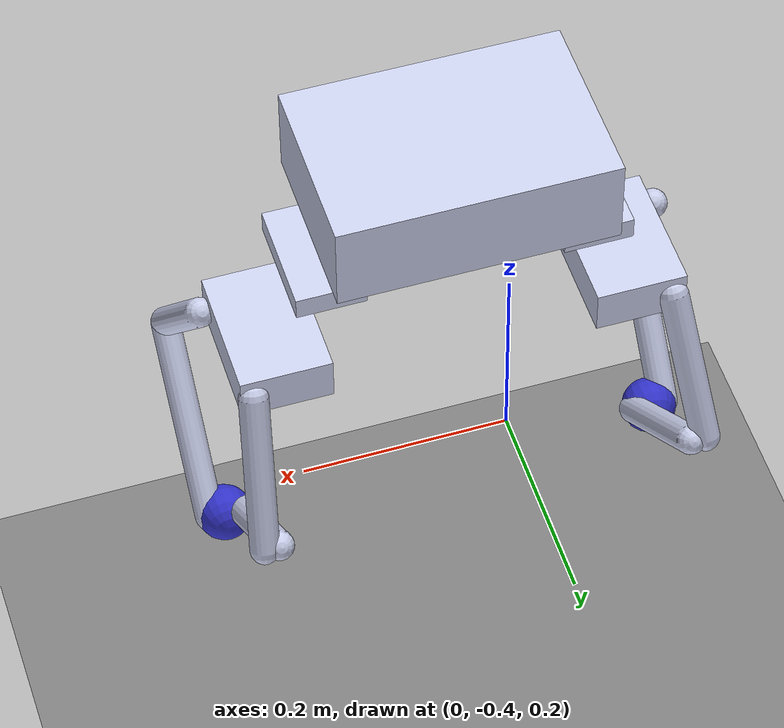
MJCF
<mujoco model="simplified_robot">

  <compiler angle="radian" eulerseq="XYZ" meshdir="urdf/robot.SLDASM/meshes/"/>

  <option gravity="0 0 -9.81" timestep="0.002"/>

  <default>
    <joint damping="0.1" armature="0.01"/>
    <geom contype="0" conaffinity="0" rgba="0.8 0.82 0.93 1"/>
  </default>

  <!-- ======================================================
       ASSETS — swap type="mesh" once STL files are ready
       ====================================================== -->
  <asset>
  </asset>

  <!-- ======================================================
       WORLD BODY
       ====================================================== -->
  <worldbody>

    <!-- Ground plane -->
    <geom name="floor" type="plane" size="5 5 0.1" pos="0 0 0"
          contype="1" conaffinity="1" rgba="0.5 0.5 0.5 1"/>

    <!-- ── BASE ────────────────────────────────────────────── -->
    <!-- Spawned 0.5m above ground; freejoint allows it to fall/move freely -->
    <body name="base_link" pos="0 0 0.5">
      <freejoint name="root"/>
      <inertial pos="0.100464743379373 -0.273417797162494 0.231369380364405"
                mass="8.12765796417228"
                fullinertia="0.113381267165392 0.104302535100205 0.193324449577809
                             -1.10883716950187e-17 6.53856800641098e-18 7.39699722855432e-05"/>
      <!-- placeholder visual: box approximating the body -->
      <geom name="base_vis" type="box" size="0.12 0.08 0.04" pos="0.1 -0.27 0.23"/>

      <body name="pad_link_right"
            pos="-0.0145352566206275 -0.168456056407975 0.153440174945304"
            euler="-3.14159265358979 0 3.14159265358979">
        <inertial pos="-3.55729214853301e-05 -0.105 0"
                  mass="1.05976991118431"
                  fullinertia="0.00120769274628234 0.0023325641456101 0.00141046839633323
                               -5.29395592033938e-22 8.824233070056e-20 -2.4525925475937e-21"/>
        <geom name="pad_right_vis" type="box" size="0.03 0.05 0.01" pos="0 -0.105 0"/>

        <!-- hip_frame_joint_right: xyz="0.01 -0.105 0.097"  rpy="0 0 π/2" -->
        <body name="hip_frame_link_right"
              pos="0.01 -0.105 0.097"
              euler="0 0 1.5707963267949">
          <inertial pos="-0.00787535032168385 -0.0307485208640013 0"
                    mass="1.51193274122872"
                    fullinertia="0.00230798720358944 0.00722477501190136 0.00595941566724505
                                 -0.000347926290296318 1.89078126881913e-19 4.08813026916916e-19"/>
          <geom name="hip_frame_right_vis" type="box" size="0.06 0.04 0.02" pos="-0.008 -0.031 0"/>

          <!-- ── ACTIVE CHAIN (right) ──────────────────────────── -->
          <!-- thigh_joint_right_1: xyz="0.0510 -0.06 0"  rpy="π -1.10816 0" -->
          <body name="thigh_right_1"
                pos="0.0510000000000153 -0.06 0"
                euler="3.14159265358979 -1.10816260407562 0">
            <joint name="thigh_joint_right_1" type="hinge" axis="0 1 0"
                   range="-3.14159 3.14159"/>
            <inertial pos="0.0700000000000471 0.00650000000000001 0"
                      mass="0.116525440310417"
                      fullinertia="2.4587749999541e-05 0.000338559690951383 0.000317254074187252
                                   -1.36515067319353e-21 1.53967296404782e-15 2.19953294954768e-21"/>
            <geom name="thigh_right_1_vis" type="capsule" size="0.013" fromto="0 0 0 0.14 0.013 0"/>

            <!-- calf_joint_right_1: xyz="0.14 0 0"  rpy="π -1.31007 π" -->
            <body name="calf_right_link_1"
                  pos="0.13999999999996 0 0"
                  euler="3.14159265358979 -1.31007351696931 3.14159265358979">
              <joint name="calf_joint_right_1" type="hinge" axis="0 1 0"
                     range="-3.14159 3.14159"/>
              <inertial pos="-0.0900000000007728 -0.00650000000000001 0"
                        mass="0.142525440310417"
                        fullinertia="3.03705833328743e-05 0.000603757766611383 0.000577401649847252
                                     9.05353026545483e-22 9.29316268849425e-16 2.33468699611553e-22"/>
              <geom name="calf_right_1_vis" type="capsule" size="0.013" fromto="0 0 0 -0.18 0.001 0"/>

              <!-- wheel_joint_right: xyz="-0.180 0.001 0"  rpy="0 0.92880 π" -->
              <body name="wheel_link_right"
                    pos="-0.180000000000025 0.000999999999999987 0"
                    euler="0 0.928798996028179 3.14159265358979">
                <joint name="wheel_joint_right" type="hinge" axis="0 1 0"
                       range="-3.14159 3.14159" damping="0.01"/>
                <inertial pos="0 -0.015 0"
                          mass="0.234111484545512"
                          fullinertia="0.00016481448512004 0.000294512247558254 0.00016481448512004
                                       -1.38494337144744e-21 -2.5410988417629e-21 3.31377145312428e-21"/>
                <!-- foot contact sphere -->
                <geom name="wheel_right_col" type="sphere" size="0.025" pos="0 -0.015 0"
                      contype="1" conaffinity="1" rgba="0.2 0.2 0.8 1"/>
              </body>
            </body>
          </body>

          <!-- ── PASSIVE CHAIN (right) — loop broken here ─────── -->
          <!-- thigh_joint_right_2: xyz="-0.0510 -0.078 0"  rpy="0 -0.88686 π" -->
          <body name="thigh_right_2"
                pos="-0.0510000000000018 -0.078 0"
                euler="0 -0.886862904121189 3.14159265358979">
            <joint name="thigh_joint_right_2" type="hinge" axis="0 1 0"
                   range="-3.14159 3.14159"/>
            <inertial pos="0.0699999999999911 0.00649999999999999 0"
                      mass="0.116525440310417"
                      fullinertia="2.45877499995411e-05 0.000338559690951382 0.000317254074187251
                                   6.9352432719385e-22 1.05707424828379e-15 -2.84526358354157e-21"/>
            <geom name="thigh_right_2_vis" type="capsule" size="0.013" fromto="0 0 0 0.14 0.013 0"/>

            <!-- calf_joint_right_2: xyz="0.140 0.013 0"  rpy="π 1.39897 π" -->
            <body name="calf_right_link_2"
                  pos="0.140000000000064 0.013 0"
                  euler="3.14159265358979 1.39896599112596 3.14159265358979">
              <joint name="calf_joint_right_2" type="hinge" axis="0 1 0"
                     range="-3.14159 3.14159"/>
              <inertial pos="-0.0899999999994293 0.00649999999999999 0"
                        mass="0.142525440310417"
                        fullinertia="3.03705833328744e-05 0.000603757766611383 0.000577401649847252
                                     -2.23748770220882e-21 2.01531838634784e-15 -1.81007091485894e-21"/>
              <geom name="calf_right_2_vis" type="capsule" size="0.013" fromto="0 0 0 -0.18 -0.001 0"/>
              <!-- TIP SITE — used as anchor for equality constraint -->
              <site name="calf_right_2_tip" pos="-0.18 -0.001 0" size="0.005"/>
            </body>
          </body>

        </body><!-- hip_frame_link_right -->
      </body><!-- pad_link_right -->

      <body name="pad_link_left"
            pos="0.215464743379373 -0.378456056407975 0.153440174945304"
            euler="3.14159265358979 0 0">
        <inertial pos="-3.5572921485344e-05 -0.105 0"
                  mass="1.05976991118431"
                  fullinertia="0.00120769274628234 0.0023325641456101 0.00141046839633323
                               1.05879118406788e-22 -2.33498734180828e-19 1.83171406703271e-21"/>
        <geom name="pad_left_vis" type="box" size="0.03 0.05 0.01" pos="0 -0.105 0"/>

        <!-- hil_frame_joint_left (typo in original URDF): xyz="0.01 -0.105 0.097"  rpy="0 0 -π/2" -->
        <body name="hip_frame_link_left"
              pos="0.01 -0.105 0.097"
              euler="0 0 -1.5707963267949">
          <inertial pos="-0.0078753503216839 0.0307485208640013 0"
                    mass="1.51193274122872"
                    fullinertia="0.00230798720358944 0.00722477501190135 0.00595941566724504
                                 0.000347926290296318 -1.35078386623163e-18 8.40488619506597e-20"/>
          <geom name="hip_frame_left_vis" type="box" size="0.06 0.04 0.02" pos="-0.008 0.031 0"/>

          <!-- ── ACTIVE CHAIN (left) ───────────────────────────── -->
          <!-- thigh_joint_left_1: xyz="0.0510 0.06 0"  rpy="π -1.10060 0" -->
          <body name="thigh_left_1"
                pos="0.0509999999999999 0.06 0"
                euler="3.14159265358979 -1.10060010562748 0">
            <joint name="thigh_joint_left_1" type="hinge" axis="0 1 0"
                   range="-3.14159 3.14159"/>
            <inertial pos="0.07 -0.00649999999999995 0"
                      mass="0.116525440310417"
                      fullinertia="2.45877499995411e-05 0.000338559690951383 0.000317254074187252
                                   5.27965569542743e-23 8.30092288309214e-20 -9.12645292528991e-22"/>
            <geom name="thigh_left_1_vis" type="capsule" size="0.013" fromto="0 0 0 0.14 -0.013 0"/>

            <!-- calf_joint_left_1: xyz="0.14 0 0"  rpy="π -1.32013 π" -->
            <body name="calf_left_link_1"
                  pos="0.14 0 0"
                  euler="3.14159265358979 -1.32012929338845 3.14159265358979">
              <joint name="calf_joint_left_1" type="hinge" axis="0 1 0"
                     range="-3.14159 3.14159"/>
              <inertial pos="-0.0899999999999976 0.00650000000000001 0"
                        mass="0.142525440310417"
                        fullinertia="3.03705833328744e-05 0.000603757766611385 0.000577401649847254
                                     -6.23776929673658e-21 2.64274279543342e-19 2.42468484584563e-22"/>
              <geom name="calf_left_1_vis" type="capsule" size="0.013" fromto="0 0 0 -0.18 -0.001 0"/>

              <!-- wheel_joint_left: xyz="-0.180 -0.001 0"  rpy="0 0.84993 π" -->
              <body name="wheel_link_left"
                    pos="-0.180000000000001 -0.001 0"
                    euler="0 0.849933072221034 3.14159265358979">
                <joint name="wheel_joint_left" type="hinge" axis="0 1 0"
                       range="-3.14159 3.14159" damping="0.01"/>
                <inertial pos="0 0.015 0"
                          mass="0.234111484545512"
                          fullinertia="0.00016481448512004 0.000294512247558254 0.00016481448512004
                                       -1.32690051411216e-21 5.22185070698748e-40 -2.10584729793552e-35"/>
                <geom name="wheel_left_col" type="sphere" size="0.025" pos="0 0.015 0"
                      contype="1" conaffinity="1" rgba="0.2 0.2 0.8 1"/>
              </body>
            </body>
          </body>

          <!-- ── PASSIVE CHAIN (left) — loop broken here ──────── -->
          <!-- thigh_joint_left_2: xyz="-0.0510 0.078 0"  rpy="0 -0.88552 π" -->
          <body name="thigh_left_2"
                pos="-0.0510000000000005 0.078 0"
                euler="0 -0.885520670756392 3.14159265358979">
            <joint name="thigh_joint_left_2" type="hinge" axis="0 1 0"
                   range="-3.14159 3.14159"/>
            <inertial pos="0.0699999999999821 -0.00649999999999995 0"
                      mass="0.116525440310417"
                      fullinertia="2.45877499995411e-05 0.000338559690951383 0.000317254074187252
                                   2.25113385230681e-22 2.15993401549847e-19 -1.13788144941437e-21"/>
            <geom name="thigh_left_2_vis" type="capsule" size="0.013" fromto="0 0 0 0.14 -0.013 0"/>

            <!-- calf_left_joint_2: xyz="0.140 -0.013 0"  rpy="π 1.40617 π" -->
            <body name="calf_left_link_2"
                  pos="0.139999999999993 -0.013 0"
                  euler="3.14159265358979 1.40616950507853 3.14159265358979">
              <joint name="calf_joint_left_2" type="hinge" axis="0 1 0"
                     range="-3.14159 3.14159"/>
              <inertial pos="-0.0900000000000073 -0.00650000000000001 0"
                        mass="0.142525440310417"
                        fullinertia="3.03705833328745e-05 0.000603757766611385 0.000577401649847254
                                     -3.00074510556189e-21 -1.04185052512279e-19 2.89004002464875e-21"/>
              <geom name="calf_left_2_vis" type="capsule" size="0.013" fromto="0 0 0 -0.18 0.001 0"/>
              <!-- TIP SITE — used as anchor for equality constraint -->
              <site name="calf_left_2_tip" pos="-0.18 0.001 0" size="0.005"/>
            </body>
          </body>

        </body><!-- hip_frame_link_left -->
      </body><!-- pad_link_left -->

    </body><!-- base_link -->
  </worldbody>

  <equality>
    <weld name="close_loop_right"
          body1="calf_right_link_2" body2="wheel_link_right"
          relpose="0 0 0 1 0 0 0"
          solimp="0.9 0.95 0.001" solref="0.02 1"/>
    <weld name="close_loop_left"
          body1="calf_left_link_2" body2="wheel_link_left"
          relpose="0 0 0 1 0 0 0"
          solimp="0.9 0.95 0.001" solref="0.02 1"/>
  </equality>

  <actuator>
    <motor name="act_thigh_right_1" joint="thigh_joint_right_1"
           gear="1" ctrllimited="true" ctrlrange="-20 20"/>
    <motor name="act_calf_right_1"  joint="calf_joint_right_1"
           gear="1" ctrllimited="true" ctrlrange="-20 20"/>
    <motor name="act_thigh_left_1"  joint="thigh_joint_left_1"
           gear="1" ctrllimited="true" ctrlrange="-20 20"/>
    <motor name="act_calf_left_1"   joint="calf_joint_left_1"
           gear="1" ctrllimited="true" ctrlrange="-20 20"/>
  </actuator>

</mujoco>
